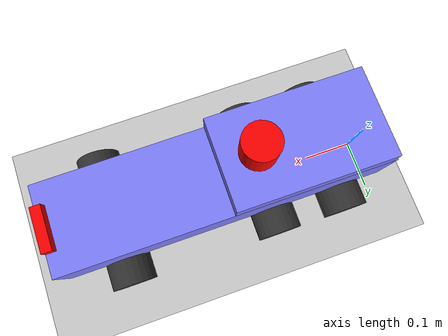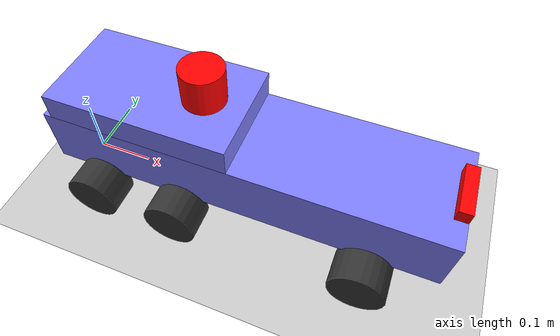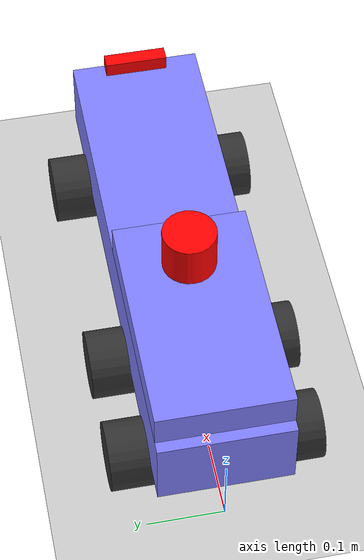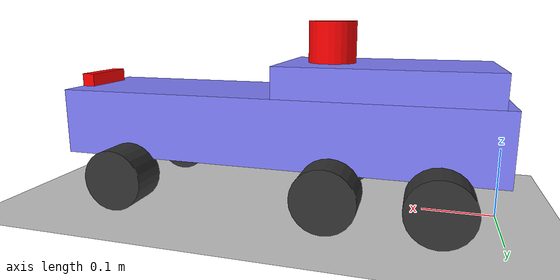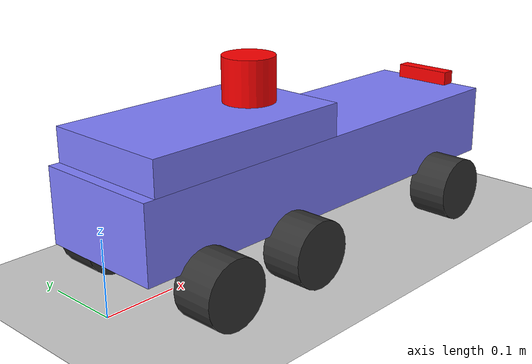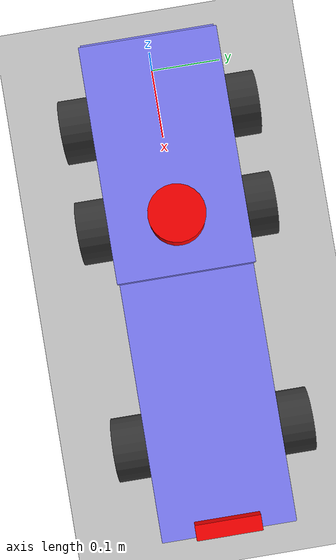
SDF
<sdf version="1.10">
 <world name="ackermann_steering">
  <model name="ground_plane">
   <static>true</static>
   <link name="link">
    <collision name="collision">
     <geometry><plane><normal>0 0 1</normal><size>100 100</size></plane></geometry>
     <surface>
      <friction>
       <ode><mu>50</mu></ode>
       <bullet><friction>1</friction><rolling_friction>0.10000000000000001</rolling_friction></bullet>
      </friction>
     </surface>
    </collision>
    <visual name="visual">
     <geometry><plane><normal>0 0 1</normal><size>100 100</size></plane></geometry>
     <material>
      <ambient>0.800000012 0.800000012 0.800000012 1</ambient>
      <diffuse>0.800000012 0.800000012 0.800000012 1</diffuse>
      <specular>0.800000012 0.800000012 0.800000012 1</specular>
     </material>
    </visual>
    <inertial>
     <mass>1</mass>
     <inertia><ixx>1</ixx><ixy>0</ixy><ixz>0</ixz><iyy>1</iyy><iyz>0</iyz><izz>1</izz></inertia>
    </inertial>
   </link>
  </model>
  <model name="vehicle_blue">
   <pose>0 0 0.12 0 0 0</pose>
   <link name="chassis">
    <pose>0.16 0 0 0 0 0</pose>
    <inertial>
     <mass>6000</mass>
     <inertia>
      <ixx>0.126164</ixx>
      <ixy>0</ixy>
      <ixz>0</ixz>
      <iyy>0.41651899999999997</iyy>
      <iyz>0</iyz>
      <izz>0.481014</izz>
     </inertia>
    </inertial>
    <visual name="visual">
     <pose>0.16 0 0 0 0 0</pose>
     <geometry><box><size>0.65000000000000002 0.17499999999999999 0.10000000000000001</size></box></geometry>
     <material><ambient>0.5 0.5 1 1</ambient><diffuse>0.5 0.5 1 1</diffuse><specular>0 0 1 1</specular></material>
    </visual>
    <collision name="collision">
     <pose>0.16 0 0 0 0 0</pose>
     <geometry><box><size>0.65000000000000002 0.17499999999999999 0.10000000000000001</size></box></geometry>
    </collision>
   </link>
   <link name="superstructure_link">
    <pose>0.16 0 0.072500000000000009 0 0 0</pose>
    <inertial>
     <mass>2</mass>
     <inertia>
      <ixx>0.126164</ixx>
      <ixy>0</ixy>
      <ixz>0</ixz>
      <iyy>0.41651899999999997</iyy>
      <iyz>0</iyz>
      <izz>0.481014</izz>
     </inertia>
    </inertial>
    <visual name="visual">
     <geometry><box><size>0.29999999999999999 0.17499999999999999 0.044999999999999998</size></box></geometry>
     <material><ambient>0.5 0.5 1 1</ambient><diffuse>0.5 0.5 1 1</diffuse><specular>0 0 1 1</specular></material>
    </visual>
    <collision name="collision">
     <geometry><box><size>0.29999999999999999 0.17499999999999999 0.044999999999999998</size></box></geometry>
    </collision>
   </link>
   <joint name="superstructure_joint" type="fixed">
    <parent>chassis</parent>
    <child>superstructure_link</child>
   </joint>
   <link name="rear_left_wheel">
    <pose>0.080000000000000002 0.11 -0.072499999999999995 0 0 0</pose>
    <inertial>
     <mass>0.20000000000000001</mass>
     <inertia>
      <ixx>0.14583299999999999</ixx>
      <ixy>0</ixy>
      <ixz>0</ixz>
      <iyy>0.14583299999999999</iyy>
      <iyz>0</iyz>
      <izz>0.125</izz>
     </inertia>
    </inertial>
    <visual name="visual">
     <pose>0 0 0 1.5708 0 0</pose>
     <geometry>
      <cylinder><length>0.057500000000000002</length><radius>0.044999999999999998</radius></cylinder>
     </geometry>
     <material>
      <ambient>0.200000003 0.200000003 0.200000003 1</ambient>
      <diffuse>0.200000003 0.200000003 0.200000003 1</diffuse>
      <specular>0.200000003 0.200000003 0.200000003 1</specular>
     </material>
    </visual>
    <collision name="collision">
     <pose>0 0 0 1.5708 0 0</pose>
     <geometry>
      <cylinder><length>0.057500000000000002</length><radius>0.044999999999999998</radius></cylinder>
     </geometry>
     <surface>
      <friction>
       <ode><mu>0.5</mu><mu2>1</mu2><fdir1>0 0 1</fdir1></ode>
       <bullet>
        <friction>0.5</friction>
        <friction2>1</friction2>
        <rolling_friction>0.10000000000000001</rolling_friction>
       </bullet>
      </friction>
     </surface>
    </collision>
   </link>
   <link name="rear_right_wheel">
    <pose>0.080000000000000002 -0.11 -0.072499999999999995 0 0 0</pose>
    <inertial>
     <mass>0.20000000000000001</mass>
     <inertia>
      <ixx>0.14583299999999999</ixx>
      <ixy>0</ixy>
      <ixz>0</ixz>
      <iyy>0.14583299999999999</iyy>
      <iyz>0</iyz>
      <izz>0.125</izz>
     </inertia>
    </inertial>
    <visual name="visual">
     <pose>0 0 0 1.5708 0 0</pose>
     <geometry>
      <cylinder><length>0.057500000000000002</length><radius>0.044999999999999998</radius></cylinder>
     </geometry>
     <material>
      <ambient>0.200000003 0.200000003 0.200000003 1</ambient>
      <diffuse>0.200000003 0.200000003 0.200000003 1</diffuse>
      <specular>0.200000003 0.200000003 0.200000003 1</specular>
     </material>
    </visual>
    <collision name="collision">
     <pose>0 0 0 1.5708 0 0</pose>
     <geometry>
      <cylinder><length>0.057500000000000002</length><radius>0.044999999999999998</radius></cylinder>
     </geometry>
     <surface>
      <friction>
       <ode><mu>0.5</mu><mu2>1</mu2><fdir1>0 0 1</fdir1></ode>
       <bullet><friction>0.5</friction><friction2>1</friction2><rolling_friction>0.5</rolling_friction></bullet>
      </friction>
     </surface>
    </collision>
   </link>
   <link name="mid_left_wheel">
    <pose>0.22500000000000001 0.11 -0.072499999999999995 0 0 0</pose>
    <inertial>
     <mass>0.20000000000000001</mass>
     <inertia>
      <ixx>0.14583299999999999</ixx>
      <ixy>0</ixy>
      <ixz>0</ixz>
      <iyy>0.14583299999999999</iyy>
      <iyz>0</iyz>
      <izz>0.125</izz>
     </inertia>
    </inertial>
    <visual name="visual">
     <pose>0 0 0 1.5708 0 0</pose>
     <geometry>
      <cylinder><length>0.057500000000000002</length><radius>0.044999999999999998</radius></cylinder>
     </geometry>
     <material>
      <ambient>0.200000003 0.200000003 0.200000003 1</ambient>
      <diffuse>0.200000003 0.200000003 0.200000003 1</diffuse>
      <specular>0.200000003 0.200000003 0.200000003 1</specular>
     </material>
    </visual>
    <collision name="collision">
     <pose>0 0 0 1.5708 0 0</pose>
     <geometry>
      <cylinder><length>0.057500000000000002</length><radius>0.044999999999999998</radius></cylinder>
     </geometry>
     <surface>
      <friction>
       <ode><mu>0.5</mu><mu2>1</mu2><fdir1>0 0 1</fdir1></ode>
       <bullet>
        <friction>0.5</friction>
        <friction2>1</friction2>
        <rolling_friction>0.10000000000000001</rolling_friction>
       </bullet>
      </friction>
     </surface>
    </collision>
   </link>
   <link name="mid_right_wheel">
    <pose>0.22500000000000001 -0.11 -0.072499999999999995 0 0 0</pose>
    <inertial>
     <mass>0.20000000000000001</mass>
     <inertia>
      <ixx>0.14583299999999999</ixx>
      <ixy>0</ixy>
      <ixz>0</ixz>
      <iyy>0.14583299999999999</iyy>
      <iyz>0</iyz>
      <izz>0.125</izz>
     </inertia>
    </inertial>
    <visual name="visual">
     <pose>0 0 0 1.5708 0 0</pose>
     <geometry>
      <cylinder><length>0.057500000000000002</length><radius>0.044999999999999998</radius></cylinder>
     </geometry>
     <material>
      <ambient>0.200000003 0.200000003 0.200000003 1</ambient>
      <diffuse>0.200000003 0.200000003 0.200000003 1</diffuse>
      <specular>0.200000003 0.200000003 0.200000003 1</specular>
     </material>
    </visual>
    <collision name="collision">
     <pose>0 0 0 1.5708 0 0</pose>
     <geometry>
      <cylinder><length>0.057500000000000002</length><radius>0.044999999999999998</radius></cylinder>
     </geometry>
     <surface>
      <friction>
       <ode><mu>0.5</mu><mu2>1</mu2><fdir1>0 0 1</fdir1></ode>
       <bullet><friction>0.5</friction><friction2>1</friction2><rolling_friction>0.5</rolling_friction></bullet>
      </friction>
     </surface>
    </collision>
   </link>
   <link name="front_left_wheel">
    <pose>0.53500000000000003 0.11 -0.072499999999999995 0 0 0</pose>
    <inertial>
     <mass>0.20000000000000001</mass>
     <inertia>
      <ixx>0.14583299999999999</ixx>
      <ixy>0</ixy>
      <ixz>0</ixz>
      <iyy>0.14583299999999999</iyy>
      <iyz>0</iyz>
      <izz>0.125</izz>
     </inertia>
    </inertial>
    <visual name="visual">
     <pose>0 0 0 1.5708 0 0</pose>
     <geometry>
      <cylinder><length>0.057500000000000002</length><radius>0.044999999999999998</radius></cylinder>
     </geometry>
     <material>
      <ambient>0.200000003 0.200000003 0.200000003 1</ambient>
      <diffuse>0.200000003 0.200000003 0.200000003 1</diffuse>
      <specular>0.200000003 0.200000003 0.200000003 1</specular>
     </material>
    </visual>
    <collision name="collision">
     <pose>0 0 0 1.5708 0 0</pose>
     <geometry>
      <cylinder><length>0.057500000000000002</length><radius>0.044999999999999998</radius></cylinder>
     </geometry>
     <surface>
      <friction>
       <ode><mu>0.5</mu><mu2>1</mu2><fdir1>0 0 1</fdir1></ode>
       <bullet><friction>0.5</friction><friction2>1</friction2><rolling_friction>0.5</rolling_friction></bullet>
      </friction>
     </surface>
    </collision>
   </link>
   <link name="front_right_wheel">
    <pose>0.53500000000000003 -0.11 -0.072499999999999995 0 0 0</pose>
    <inertial>
     <mass>0.20000000000000001</mass>
     <inertia>
      <ixx>0.14583299999999999</ixx>
      <ixy>0</ixy>
      <ixz>0</ixz>
      <iyy>0.14583299999999999</iyy>
      <iyz>0</iyz>
      <izz>0.125</izz>
     </inertia>
    </inertial>
    <visual name="visual">
     <pose>0 0 0 1.5708 0 0</pose>
     <geometry>
      <cylinder><length>0.057500000000000002</length><radius>0.044999999999999998</radius></cylinder>
     </geometry>
     <material>
      <ambient>0.200000003 0.200000003 0.200000003 1</ambient>
      <diffuse>0.200000003 0.200000003 0.200000003 1</diffuse>
      <specular>0.200000003 0.200000003 0.200000003 1</specular>
     </material>
    </visual>
    <collision name="collision">
     <pose>0 0 0 1.5708 0 0</pose>
     <geometry>
      <cylinder><length>0.057500000000000002</length><radius>0.044999999999999998</radius></cylinder>
     </geometry>
     <surface>
      <friction>
       <ode><mu>0.5</mu><mu2>1</mu2><fdir1>0 0 1</fdir1></ode>
       <bullet>
        <friction>0.5</friction>
        <friction2>1</friction2>
        <rolling_friction>0.10000000000000001</rolling_friction>
       </bullet>
      </friction>
     </surface>
    </collision>
   </link>
   <link name="front_left_wheel_steering_link">
    <pose>0.53500000000000003 0.11 -0.072499999999999995 0 0 0</pose>
    <inertial>
     <mass>0.10000000000000001</mass>
     <inertia>
      <ixx>0.015299999999999999</ixx>
      <iyy>0.025000000000000001</iyy>
      <izz>0.015299999999999999</izz>
      <ixy>0</ixy>
      <ixz>0</ixz>
      <iyz>0</iyz>
     </inertia>
    </inertial>
   </link>
   <link name="front_right_wheel_steering_link">
    <pose>0.53500000000000003 -0.11 -0.072499999999999995 0 0 0</pose>
    <inertial>
     <mass>0.10000000000000001</mass>
     <inertia>
      <ixx>0.015299999999999999</ixx>
      <iyy>0.025000000000000001</iyy>
      <izz>0.015299999999999999</izz>
      <ixy>0</ixy>
      <ixz>0</ixz>
      <iyz>0</iyz>
     </inertia>
    </inertial>
   </link>
   <link name="laser_frame">
    <pose>0.23999999999999999 0 0.125 0 0 0</pose>
    <visual name="laser_visual">
     <geometry>
      <cylinder><radius>0.035000000000000003</radius><length>0.059999999999999998</length></cylinder>
     </geometry>
     <material><ambient>1 0 0 1</ambient><diffuse>1 0 0 1</diffuse><specular>0 0 0 1</specular></material>
    </visual>
    <sensor name="gpu_lidar" type="gpu_lidar">
     <topic>lidar</topic>
     <update_rate>10</update_rate>
     <enable_metrics>false</enable_metrics>
     <lidar>
      <scan>
       <horizontal>
        <samples>640</samples>
        <resolution>1</resolution>
        <min_angle>-3.1415000000000002</min_angle>
        <max_angle>3.1415000000000002</max_angle>
       </horizontal>
       <vertical>
        <samples>1</samples>
        <min_angle>0</min_angle>
        <max_angle>0</max_angle>
        <resolution>0.01</resolution>
       </vertical>
      </scan>
      <range><min>0.080000000000000002</min><max>10</max><resolution>0.01</resolution></range>
      <noise><type>none</type><mean>0</mean><stddev>0</stddev></noise>
      <visibility_mask>4294967295</visibility_mask>
     </lidar>
    </sensor>
    <inertial>
     <mass>1</mass>
     <inertia><ixx>1</ixx><ixy>0</ixy><ixz>0</ixz><iyy>1</iyy><iyz>0</iyz><izz>1</izz></inertia>
    </inertial>
   </link>
   <link name="camera_link">
    <pose>0.63500000000000001 0 0.059999999999999998 0 0 0</pose>
    <visual name="camera_visual">
     <geometry><box><size>0.02 0.085000000000000006 0.02</size></box></geometry>
     <material><ambient>1 0 0 1</ambient><diffuse>1 0 0 1</diffuse><specular>0 0 0 1</specular></material>
    </visual>
    <sensor name="camera" type="camera">
     <topic>camera/image_raw</topic>
     <update_rate>10</update_rate>
     <enable_metrics>false</enable_metrics>
     <camera name="__default__">
      <horizontal_fov>1.089</horizontal_fov>
      <image><width>640</width><height>480</height><format>RGB_INT8</format><anti_aliasing>4</anti_aliasing></image>
      <camera_info_topic>camera/camera_info</camera_info_topic>
      <triggered>false</triggered>
      <clip><near>0.050000000000000003</near><far>8</far></clip>
      <save enabled="false"><path>__default__</path></save>
      <visibility_mask>4294967295</visibility_mask>
      <noise><type>none</type><mean>0</mean><stddev>0</stddev></noise>
      <distortion><k1>0</k1><k2>0</k2><k3>0</k3><p1>0</p1><p2>0</p2><center>0.5 0.5</center></distortion>
      <lens>
       <type>stereographic</type>
       <scale_to_hfov>true</scale_to_hfov>
       <cutoff_angle>1.5707963267948966</cutoff_angle>
       <env_texture_size>256</env_texture_size>
      </lens>
     </camera>
    </sensor>
    <inertial>
     <mass>1</mass>
     <inertia><ixx>1</ixx><ixy>0</ixy><ixz>0</ixz><iyy>1</iyy><iyz>0</iyz><izz>1</izz></inertia>
    </inertial>
   </link>
   <link name="imu_link">
    <pose>0.16 0 0 0 0 0</pose>
    <visual name="imu_visual">
     <geometry><box><size>0.044999999999999998 0.059999999999999998 0.01</size></box></geometry>
     <material><ambient>1 0 0 1</ambient><diffuse>1 0 0 1</diffuse><specular>0 0 0 1</specular></material>
    </visual>
    <sensor name="imu_sensor" type="imu">
     <topic>imu</topic>
     <update_rate>30</update_rate>
     <enable_metrics>false</enable_metrics>
     <imu>
      <orientation_reference_frame>
       <localization>CUSTOM</localization>
       <custom_rpy>0 0 0</custom_rpy>
       <grav_dir_x>1 0 0</grav_dir_x>
      </orientation_reference_frame>
      <angular_velocity>
       <x>
        <noise type="none">
         <mean>0</mean>
         <stddev>0</stddev>
         <bias_mean>0</bias_mean>
         <bias_stddev>0</bias_stddev>
         <dynamic_bias_stddev>0</dynamic_bias_stddev>
         <dynamic_bias_correlation_time>0</dynamic_bias_correlation_time>
         <precision>0</precision>
        </noise>
       </x>
       <y>
        <noise type="none">
         <mean>0</mean>
         <stddev>0</stddev>
         <bias_mean>0</bias_mean>
         <bias_stddev>0</bias_stddev>
         <dynamic_bias_stddev>0</dynamic_bias_stddev>
         <dynamic_bias_correlation_time>0</dynamic_bias_correlation_time>
         <precision>0</precision>
        </noise>
       </y>
       <z>
        <noise type="none">
         <mean>0</mean>
         <stddev>0</stddev>
         <bias_mean>0</bias_mean>
         <bias_stddev>0</bias_stddev>
         <dynamic_bias_stddev>0</dynamic_bias_stddev>
         <dynamic_bias_correlation_time>0</dynamic_bias_correlation_time>
         <precision>0</precision>
        </noise>
       </z>
      </angular_velocity>
      <linear_acceleration>
       <x>
        <noise type="none">
         <mean>0</mean>
         <stddev>0</stddev>
         <bias_mean>0</bias_mean>
         <bias_stddev>0</bias_stddev>
         <dynamic_bias_stddev>0</dynamic_bias_stddev>
         <dynamic_bias_correlation_time>0</dynamic_bias_correlation_time>
         <precision>0</precision>
        </noise>
       </x>
       <y>
        <noise type="none">
         <mean>0</mean>
         <stddev>0</stddev>
         <bias_mean>0</bias_mean>
         <bias_stddev>0</bias_stddev>
         <dynamic_bias_stddev>0</dynamic_bias_stddev>
         <dynamic_bias_correlation_time>0</dynamic_bias_correlation_time>
         <precision>0</precision>
        </noise>
       </y>
       <z>
        <noise type="none">
         <mean>0</mean>
         <stddev>0</stddev>
         <bias_mean>0</bias_mean>
         <bias_stddev>0</bias_stddev>
         <dynamic_bias_stddev>0</dynamic_bias_stddev>
         <dynamic_bias_correlation_time>0</dynamic_bias_correlation_time>
         <precision>0</precision>
        </noise>
       </z>
      </linear_acceleration>
      <enable_orientation>true</enable_orientation>
     </imu>
    </sensor>
    <inertial>
     <mass>1</mass>
     <inertia><ixx>1</ixx><ixy>0</ixy><ixz>0</ixz><iyy>1</iyy><iyz>0</iyz><izz>1</izz></inertia>
    </inertial>
   </link>
   <joint name="laser_joint" type="fixed"><parent>superstructure_link</parent><child>laser_frame</child></joint>
   <joint name="camera_joint" type="fixed"><parent>chassis</parent><child>camera_link</child></joint>
   <joint name="imu_joint" type="fixed"><parent>chassis</parent><child>imu_link</child></joint>
   <joint name="front_left_wheel_steering_joint" type="revolute">
    <child>front_left_wheel_steering_link</child>
    <parent>chassis</parent>
    <axis>
     <xyz>0 0 1</xyz>
     <limit>
      <lower>-0.59999999999999998</lower>
      <upper>0.59999999999999998</upper>
      <effort>25</effort>
      <velocity>1</velocity>
      <stiffness>100000000</stiffness>
      <dissipation>1</dissipation>
     </limit>
     <dynamics>
      <spring_reference>0</spring_reference>
      <spring_stiffness>0</spring_stiffness>
      <damping>0</damping>
      <friction>0</friction>
     </dynamics>
    </axis>
   </joint>
   <joint name="front_right_wheel_steering_joint" type="revolute">
    <parent>chassis</parent>
    <child>front_right_wheel_steering_link</child>
    <axis>
     <xyz>0 0 1</xyz>
     <limit>
      <lower>-0.59999999999999998</lower>
      <upper>0.59999999999999998</upper>
      <effort>25</effort>
      <velocity>1</velocity>
      <stiffness>100000000</stiffness>
      <dissipation>1</dissipation>
     </limit>
     <dynamics>
      <spring_reference>0</spring_reference>
      <spring_stiffness>0</spring_stiffness>
      <damping>0</damping>
      <friction>0</friction>
     </dynamics>
    </axis>
   </joint>
   <joint name="front_left_wheel_joint" type="revolute">
    <parent>front_left_wheel_steering_link</parent>
    <child>front_left_wheel</child>
    <axis>
     <xyz>0 1 0</xyz>
     <limit>
      <lower>-1.7976900000000001e+308</lower>
      <upper>1.7976900000000001e+308</upper>
      <effort>inf</effort>
      <velocity>inf</velocity>
      <stiffness>100000000</stiffness>
      <dissipation>1</dissipation>
     </limit>
     <dynamics>
      <spring_reference>0</spring_reference>
      <spring_stiffness>0</spring_stiffness>
      <damping>0</damping>
      <friction>0</friction>
     </dynamics>
    </axis>
   </joint>
   <joint name="front_right_wheel_joint" type="revolute">
    <parent>front_right_wheel_steering_link</parent>
    <child>front_right_wheel</child>
    <axis>
     <xyz>0 1 0</xyz>
     <limit>
      <lower>-1.7976900000000001e+308</lower>
      <upper>1.7976900000000001e+308</upper>
      <effort>inf</effort>
      <velocity>inf</velocity>
      <stiffness>100000000</stiffness>
      <dissipation>1</dissipation>
     </limit>
     <dynamics>
      <spring_reference>0</spring_reference>
      <spring_stiffness>0</spring_stiffness>
      <damping>0</damping>
      <friction>0</friction>
     </dynamics>
    </axis>
   </joint>
   <joint name="rear_left_wheel_joint" type="revolute">
    <parent>chassis</parent>
    <child>rear_left_wheel</child>
    <axis>
     <xyz>0 1 0</xyz>
     <limit>
      <lower>-1.7976900000000001e+308</lower>
      <upper>1.7976900000000001e+308</upper>
      <effort>inf</effort>
      <velocity>inf</velocity>
      <stiffness>100000000</stiffness>
      <dissipation>1</dissipation>
     </limit>
     <dynamics>
      <spring_reference>0</spring_reference>
      <spring_stiffness>0</spring_stiffness>
      <damping>0</damping>
      <friction>0</friction>
     </dynamics>
    </axis>
   </joint>
   <joint name="rear_right_wheel_joint" type="revolute">
    <parent>chassis</parent>
    <child>rear_right_wheel</child>
    <axis>
     <xyz>0 1 0</xyz>
     <limit>
      <lower>-1.7976900000000001e+308</lower>
      <upper>1.7976900000000001e+308</upper>
      <effort>inf</effort>
      <velocity>inf</velocity>
      <stiffness>100000000</stiffness>
      <dissipation>1</dissipation>
     </limit>
     <dynamics>
      <spring_reference>0</spring_reference>
      <spring_stiffness>0</spring_stiffness>
      <damping>0</damping>
      <friction>0</friction>
     </dynamics>
    </axis>
   </joint>
   <joint name="mid_left_wheel_joint" type="revolute">
    <parent>chassis</parent>
    <child>mid_left_wheel</child>
    <axis>
     <xyz>0 1 0</xyz>
     <limit>
      <lower>-1.7976900000000001e+308</lower>
      <upper>1.7976900000000001e+308</upper>
      <effort>inf</effort>
      <velocity>inf</velocity>
      <stiffness>100000000</stiffness>
      <dissipation>1</dissipation>
     </limit>
     <dynamics>
      <spring_reference>0</spring_reference>
      <spring_stiffness>0</spring_stiffness>
      <damping>0</damping>
      <friction>0</friction>
     </dynamics>
    </axis>
   </joint>
   <joint name="mid_right_wheel_joint" type="revolute">
    <parent>chassis</parent>
    <child>mid_right_wheel</child>
    <axis>
     <xyz>0 1 0</xyz>
     <limit>
      <lower>-1.7976900000000001e+308</lower>
      <upper>1.7976900000000001e+308</upper>
      <effort>inf</effort>
      <velocity>inf</velocity>
      <stiffness>100000000</stiffness>
      <dissipation>1</dissipation>
     </limit>
     <dynamics>
      <spring_reference>0</spring_reference>
      <spring_stiffness>0</spring_stiffness>
      <damping>0</damping>
      <friction>0</friction>
     </dynamics>
    </axis>
   </joint>
   <plugin name="gz::sim::systems::AckermannSteering" filename="gz-sim-ackermann-steering-system">
    <left_joint>front_left_wheel_joint</left_joint>
    <left_joint>rear_left_wheel_joint</left_joint>
    <left_joint>mid_left_wheel_joint</left_joint>
    <right_joint>front_right_wheel_joint</right_joint>
    <right_joint>rear_right_wheel_joint</right_joint>
    <right_joint>mid_right_wheel_joint</right_joint>
    <left_steering_joint>front_left_wheel_steering_joint</left_steering_joint>
    <right_steering_joint>front_right_wheel_steering_joint</right_steering_joint>
    <kingpin_width>0.22</kingpin_width>
    <steering_limit>0.7854</steering_limit>
    <wheel_base>0.4</wheel_base>
    <wheel_separation>0.22</wheel_separation>
    <wheel_radius>0.0575</wheel_radius>
    <min_velocity>-5</min_velocity>
    <max_velocity>5</max_velocity>
    <min_acceleration>-7</min_acceleration>
    <max_acceleration>7</max_acceleration>
   </plugin>
   <static>false</static>
  </model>
 </world>
</sdf>
